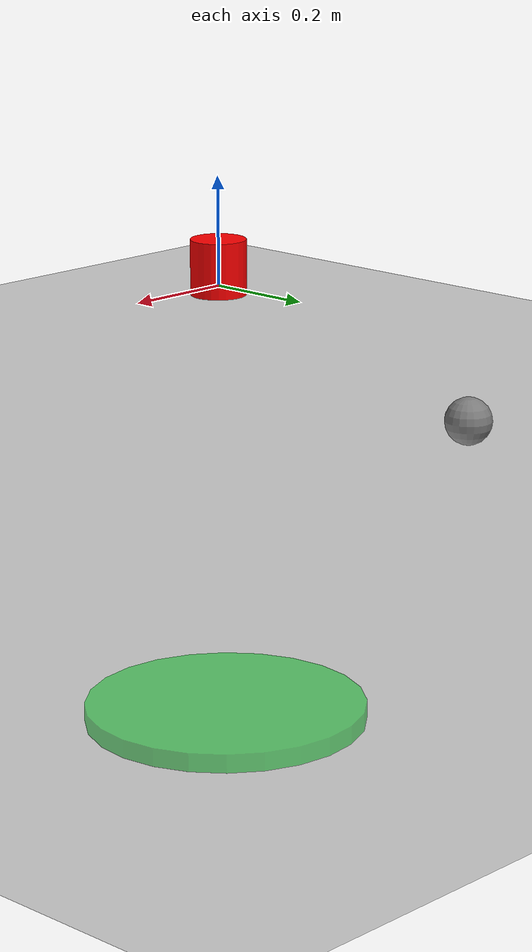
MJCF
<mujoco model="push ball">
  <compiler angle="radian"/>
  <option timestep="0.01" gravity="0 0 -9.8"/>

  <worldbody>
    <light name="sun" pos="0 0 5"/>
    <geom
      name="floor"
      type="plane"
      size="5 5 0.1"
      rgba="0.8 0.8 0.8 1"
      friction="2.0 0.01 0.001"
    />

    <body name="target_body" pos="1.5 1.5 0.01">
      <geom
        name="target_marker"
        type="cylinder"
        size="0.15 0.01"
        rgba="0.1 0.8 0.2 0.6"
        contype="0"
        conaffinity="0"
      />
    </body>

    <body name="robot" pos="0.05 0.05 0.05">
      <joint name="robot_x" type="slide" axis="1 0 0"/>
      <joint name="robot_y" type="slide" axis="0 1 0"/>

      <geom
        name="robot_cylinder"
        type="cylinder"
        size="0.05 0.05"
        mass="0.4"
        rgba="1 0 0 1"
      />
    </body>

    <body name="ball" pos="0.5 1.0 0.035">
      <joint name="ball_x" type="slide" axis="1 0 0" damping="0.03" frictionloss="0.001"/>
      <joint name="ball_y" type="slide" axis="0 1 0" damping="0.03" frictionloss="0.001"/>
      <geom
        name="ball_geom"
        type="sphere"
        size="0.035"
        mass="0.06"
        friction="2.0 0.01 0.001"/>
    </body>

  </worldbody>

  <actuator>
    <velocity name="robot_vx" joint="robot_x" ctrlrange="-0.3 0.3" kv="10" ctrllimited="true"/>
    <velocity name="robot_vy" joint="robot_y" ctrlrange="-0.3 0.3" kv="10" ctrllimited="true"/>
  </actuator>
</mujoco>
